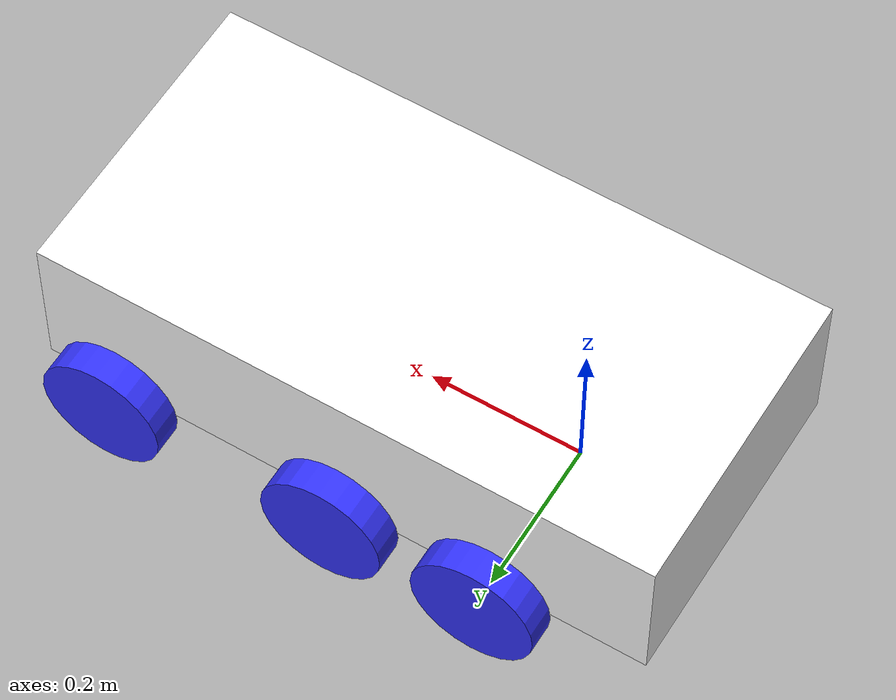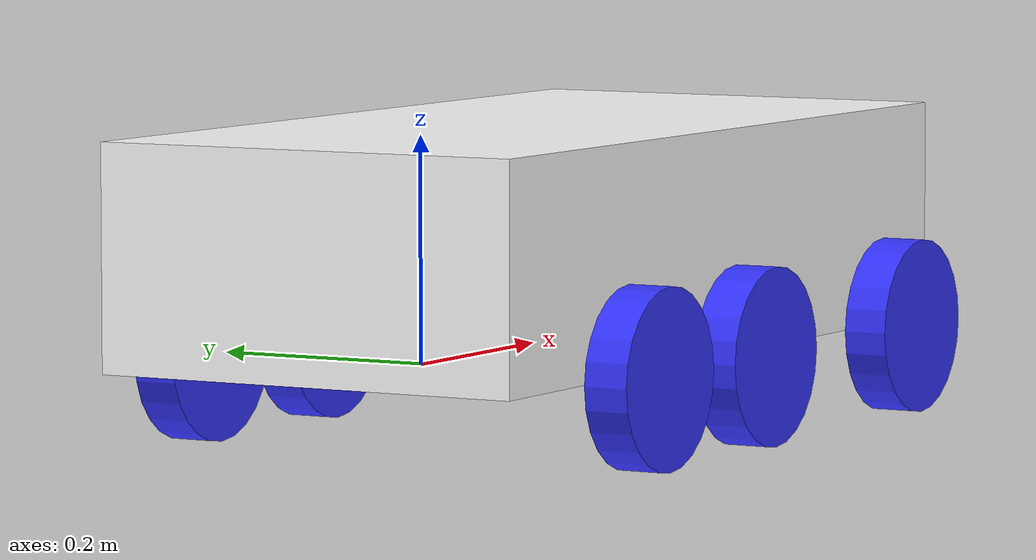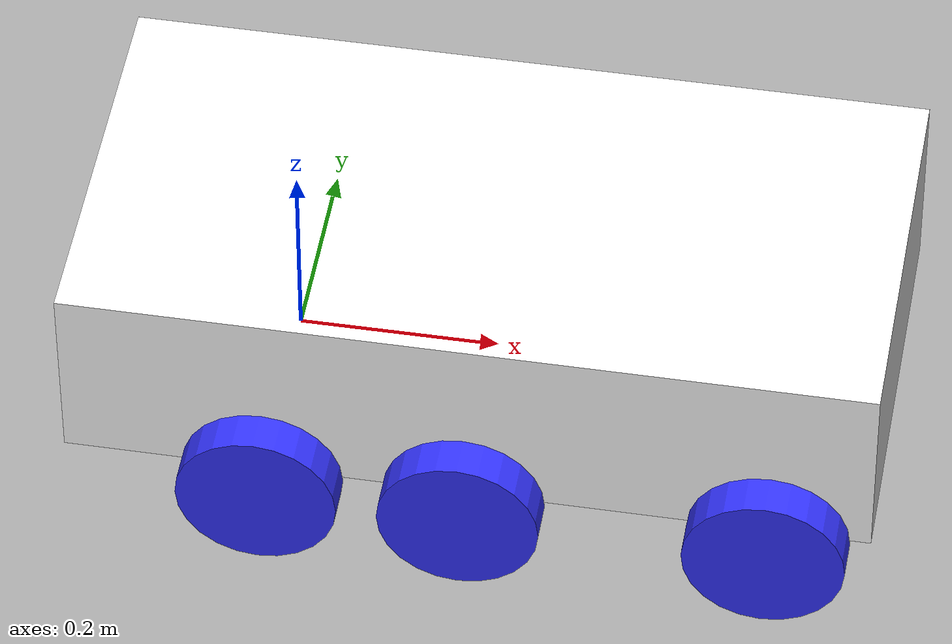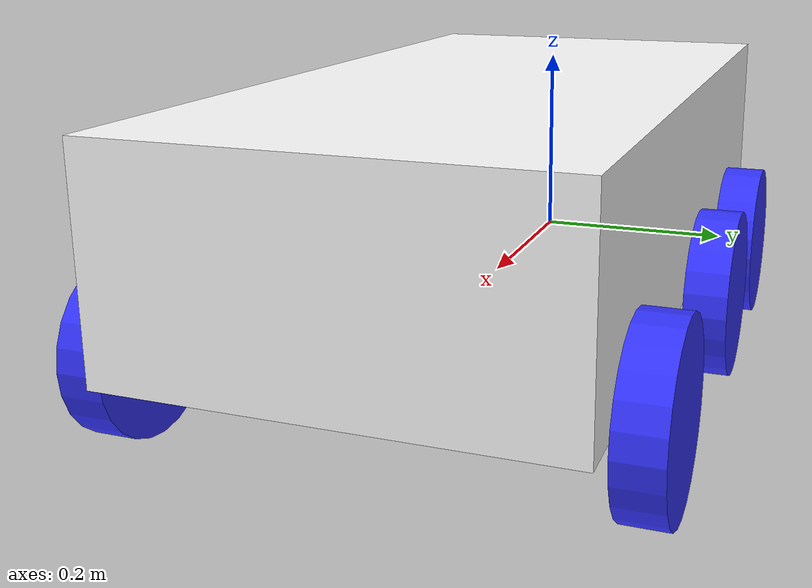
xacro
<?xml version="1.0"?>
<robot xmlns:xacro="http://www.ros.org/wiki/xacro"  name="robot">

    <xacro:include filename="inertia_macros.xacro"/>

    <material name="white">
        <color rgba="1 1 1 1"/>
    </material>
    <material name="orange">
        <color rgba="1 0.3 0.1 1"/>
    </material>
    <material name="blue">
        <color rgba="0.2 0.2 1 1"/>
    </material>
    <material name="black">
        <color rgba="0 0 0 1"/>
    </material>
    <material name="red">
        <color rgba="1 0 0 01"/>
    </material>

    <!-- Base link -->
    <link name="base_link">

    </link>

    <!-- Chassis Link -->
    <joint name="chassis_joint" type="fixed">
        <parent link="base_link"/>
        <child link="chassis"/>
        <origin xyz="-0.1 0.0 0.0" rpy="0.0 0.0 0.0"/>
    </joint>

    <link name="chassis">
        <visual>
            <origin xyz="0.3 0 0.1"/>
            <geometry>
                <box size="0.8 0.4 0.2"/>
            </geometry>
            <material name="white"/>
        </visual>
        <collision>
                <origin xyz="0.3 0 0.1"/>
                <geometry>
                    <box size="0.8 0.4 0.2"/>
                </geometry>
        </collision>

        <xacro:inertial_box mass="1.25" x='0.8' y="0.4" z="0.2">
            <origin xyz="0.3 0 0.1" rpy="0.0 0.0 0.0"/>
        </xacro:inertial_box>
    </link>
    <gazebo reference="chassis">
        <material>
            Gazebo/White
        </material>
    </gazebo>
    <!-- Left Wheel Link1 -->

    <joint name="left_wheel_joint1" type="continuous">
        <parent link="base_link"/>
        <child link="left_wheel1"/>
        <origin xyz="0 0.225 0" rpy="-${pi/2} 0.0 0.0"/>
        <axis xyz="0 0 1"/>
    </joint>

    <link name="left_wheel1">
        <visual>
            <geometry>
                <cylinder radius="0.08" length="0.04"/>
            </geometry>
            <material name="blue"></material>
        </visual>
        <collision>
            <geometry>
                <cylinder radius="0.08" length="0.04"/>
            </geometry>
        </collision>
        <xacro:inertial_cylinder mass="0.1" length="0.04" radius="0.08">
            <origin xyz="0.0 0.0 0.0" rpy="0.0 0.0 0.0"/>
        </xacro:inertial_cylinder>
    </link>
    <gazebo reference="left_wheel1">
        <material>
            Gazebo/Blue
        </material>
    </gazebo>

    <joint name="left_wheel_joint2" type="continuous">
        <parent link="base_link"/>
        <child link="left_wheel2"/>
        <origin xyz="0.2 0.225 0" rpy="-${pi/2} 0.0 0.0"/>
        <axis xyz="0 0 1"/>
    </joint>

    <link name="left_wheel2">
        <visual>
            <geometry>
                <cylinder radius="0.08" length="0.04"/>
            </geometry>
            <material name="blue"></material>
        </visual>
        <collision>
            <geometry>
                <cylinder radius="0.08" length="0.04"/>
            </geometry>
        </collision>
        <xacro:inertial_cylinder mass="0.1" length="0.04" radius="0.08">
            <origin xyz="0.0 0.0 0.0" rpy="0.0 0.0 0.0"/>
        </xacro:inertial_cylinder>
    </link>

    <gazebo reference="left_wheel2">
        <material>
            Gazebo/Blue
        </material>
        <mu1 value="0.001"/>
        <mu2 value="0.001"/>
    </gazebo>

    <joint name="left_wheel_joint3" type="continuous">
        <parent link="base_link"/>
        <child link="left_wheel3"/>
        <origin xyz="0.5 0.225 0" rpy="-${pi/2} 0.0 0.0"/>
        <axis xyz="0 0 1"/>
    </joint>

    <link name="left_wheel3">
        <visual>
            <geometry>
                <cylinder radius="0.08" length="0.04"/>
            </geometry>
            <material name="blue"></material>
        </visual>
        <collision>
            <geometry>
                <cylinder radius="0.08" length="0.04"/>
            </geometry>
        </collision>
        <xacro:inertial_cylinder mass="0.1" length="0.04" radius="0.08">
            <origin xyz="0.0 0.0 0.0" rpy="0.0 0.0 0.0"/>
        </xacro:inertial_cylinder>
    </link>

    <gazebo reference="left_wheel3">
        <material>
            Gazebo/Blue
        </material>
        <mu1 value="0.001"/>
        <mu2 value="0.001"/>
    </gazebo>

        <!-- right Wheel Link -->

    <joint name="right_wheel_joint1" type="continuous">
        <parent link="base_link"/>
        <child link="right_wheel1"/>
        <origin xyz="0 -0.225 0" rpy="+${pi/2} 0.0 0.0"/>
        <axis xyz="0 0 -1"/>
    </joint>

    <link name="right_wheel1">
        <visual>
            <geometry>
                <cylinder radius="0.08" length="0.04"/>
            </geometry>
            <material name="blue"></material>
        </visual>
        <collision>
            <geometry>
                <cylinder radius="0.08" length="0.04"/>
            </geometry>
        </collision>
        <xacro:inertial_cylinder mass="0.1" length="0.04" radius="0.08">
            <origin xyz="0.0 0.0 0.0" rpy="0.0 0.0 0.0"/>
        </xacro:inertial_cylinder>
    </link>

    <gazebo reference="right_wheel1">
        <material>
            Gazebo/Blue
        </material>
    </gazebo>

    <joint name="right_wheel_joint2" type="continuous">
        <parent link="base_link"/>
        <child link="right_wheel2"/>
        <origin xyz="0.2 -0.225 0" rpy="+${pi/2} 0.0 0.0"/>
        <axis xyz="0 0 -1"/>
    </joint>

    <link name="right_wheel2">
        <visual>
            <geometry>
                <cylinder radius="0.08" length="0.04"/>
            </geometry>
            <material name="blue"></material>
        </visual>
        <collision>
            <geometry>
                <cylinder radius="0.08" length="0.04"/>
            </geometry>
        </collision>
        <xacro:inertial_cylinder mass="0.1" length="0.04" radius="0.08">
            <origin xyz="0.0 0.0 0.0" rpy="0.0 0.0 0.0"/>
        </xacro:inertial_cylinder>
    </link>

    <gazebo reference="right_wheel2">
        <material>
            Gazebo/Blue
        </material>
        <mu1 value="0.001"/>
        <mu2 value="0.001"/>
    </gazebo>

    <joint name="right_wheel_joint3" type="continuous">
        <parent link="base_link"/>
        <child link="right_wheel3"/>
        <origin xyz="0.5 -0.225 0" rpy="+${pi/2} 0.0 0.0"/>
        <axis xyz="0 0 -1"/>
    </joint>

    <link name="right_wheel3">
        <visual>
            <geometry>
                <cylinder radius="0.08" length="0.04"/>
            </geometry>
            <material name="blue"></material>
        </visual>
        <collision>
            <geometry>
                <cylinder radius="0.08" length="0.04"/>
            </geometry>
        </collision>
        <xacro:inertial_cylinder mass="0.1" length="0.04" radius="0.08">
            <origin xyz="0.0 0.0 0.0" rpy="0.0 0.0 0.0"/>
        </xacro:inertial_cylinder>
    </link>

    <gazebo reference="right_wheel3">
        <material>
            Gazebo/Blue
        </material>
        <mu1 value="0.001"/>
        <mu2 value="0.001"/>
    </gazebo>

</robot>

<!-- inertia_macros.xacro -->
<robot xmlns:xacro="http://www.ros.org/wiki/xacro" >

    <xacro:macro name="inertial_box" params="mass x y z *origin">
        <inertial>
            <xacro:insert_block name="origin"/>
            <mass value="${mass}" />
            <inertia ixx="${(1/12) * mass * (y*y+z*z)}" ixy="0.0" ixz="0.0"
                    iyy="${(1/12) * mass * (x*x+z*z)}" iyz="0.0"
                    izz="${(1/12) * mass * (x*x+y*y)}" />
        </inertial>
    </xacro:macro>

    <xacro:macro name="inertial_cylinder" params="mass length radius *origin">
        <inertial>
            <xacro:insert_block name="origin"/>
            <mass value="${mass}" />
            <inertia ixx="${(1/12) * mass * (3*radius*radius + length*length)}" ixy="0.0" ixz="0.0"
                    iyy="${(1/12) * mass * (3*radius*radius + length*length)}" iyz="0.0"
                    izz="${(1/2) * mass * (radius*radius)}" />
        </inertial>
    </xacro:macro>
</robot>
